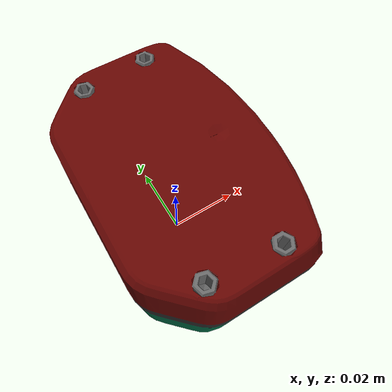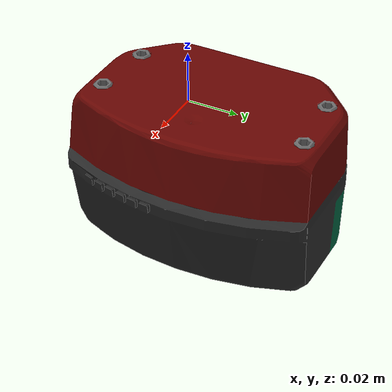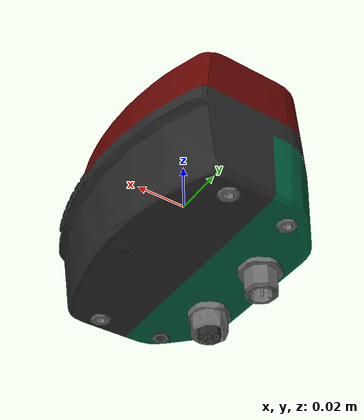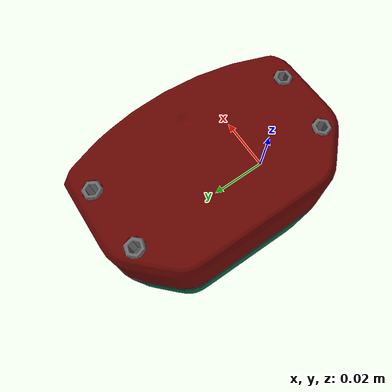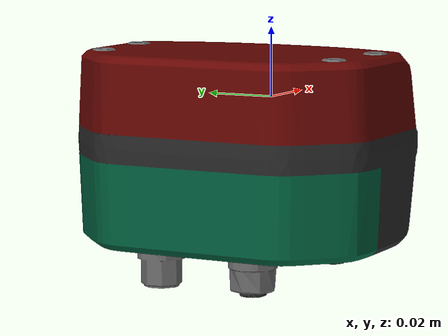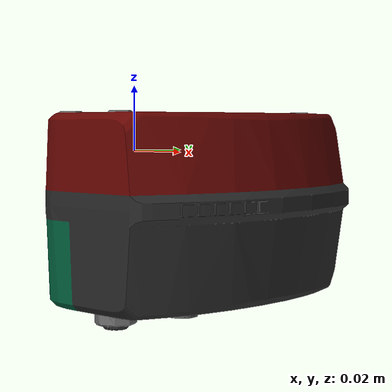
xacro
<?xml version="1.0"?>
<robot xmlns:xacro="http://wiki.ros.org/xacro" name="r2300" >
    <xacro:include filename="$(find pf_description)/urdf/R2300.urdf.xacro" />

    <!-- create a virtual root link -->
    <link name="world" />

    <!-- instantiate r2300 macro -->
    <xacro:r2300 prefix="" />

    <!-- connect world link to scanner base_link -->
    <joint name="world_joint" type="fixed">
        <parent link="world" />
        <child link = "base_link" />
        <origin xyz="0.0 0.0 0.0" rpy="0.0 0.0 0.0" />
    </joint>
</robot>

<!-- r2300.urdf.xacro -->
<robot xmlns:xacro="http://ros.org/wiki/xacro">

    <xacro:macro name="r2300" params="prefix" >
        <link name="${prefix}base_link" >
            <visual>
                <origin xyz="0 0 0" rpy="0 0 0" />
                <geometry>
                    <mesh filename="$(find pf_description)/meshes/R2300.dae" />
                </geometry>
            </visual>

            <collision>
                <origin xyz="0.01195 0.0158 -0.017" rpy="0 0 0" />
                <geometry>
                    <box size="0.07 0.0959 0.0586" />
                </geometry>
            </collision>
        </link>
    </xacro:macro>
</robot>
